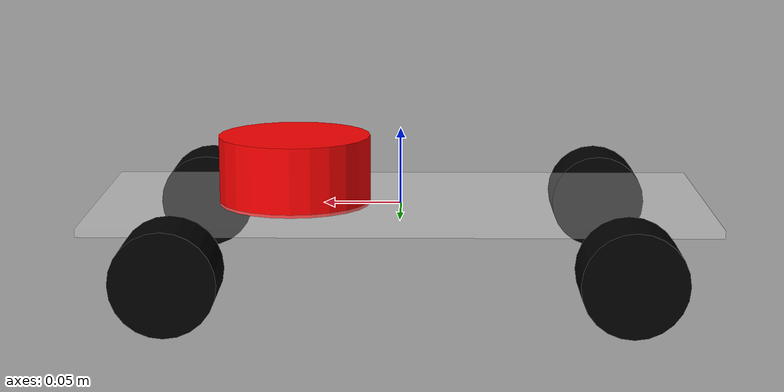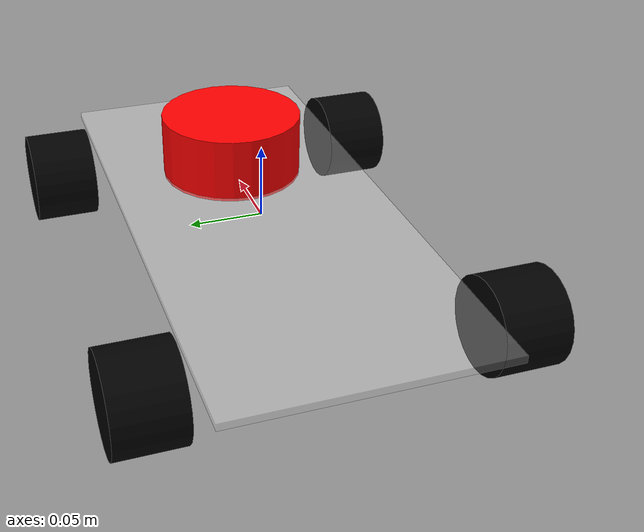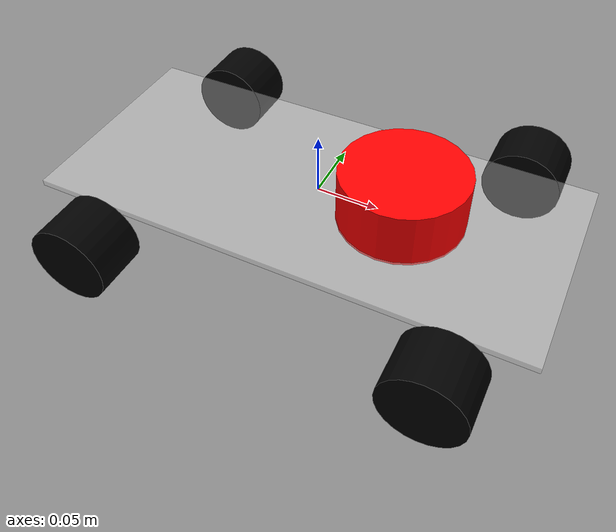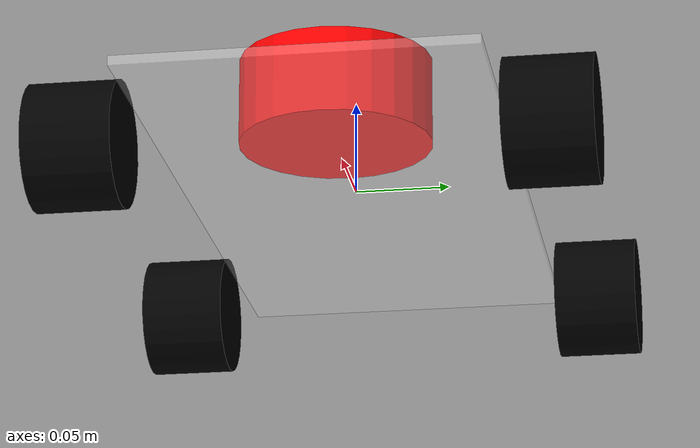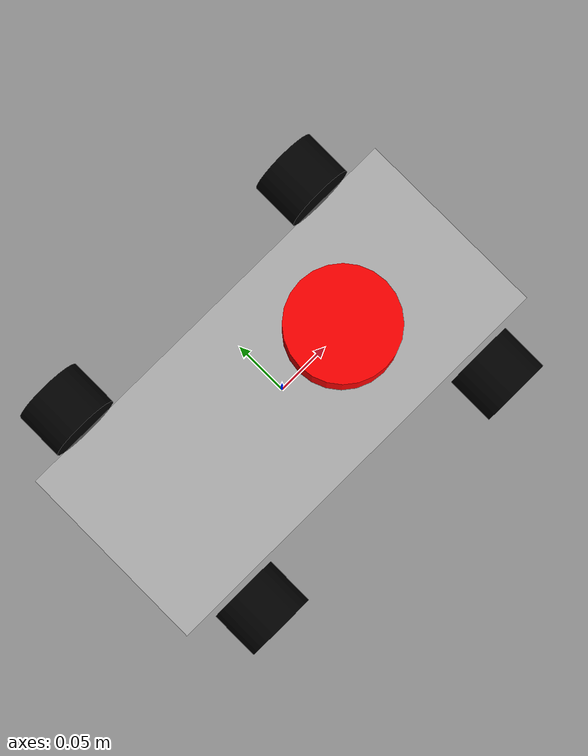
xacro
<?xml version="1.0"?>
<robot xmlns:xacro="http://www.ros.org/wiki/xacro"  name="robot">

   <xacro:arg name="use_ros2_control" default="true"/>

   <xacro:include filename="robot_core2.xacro"/>

   <xacro:if value="$(arg use_ros2_control)">
      <xacro:include filename="ros2_control2.xacro" />
   </xacro:if>
   <xacro:unless value="$(arg use_ros2_control)">
      <xacro:include filename="gazebo_control2.xacro" />
   </xacro:unless>

   <xacro:include filename="lidar2.xacro"/>

</robot>

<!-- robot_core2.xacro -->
<robot xmlns:xacro="http://www.ros.org/wiki/xacro" >

    <xacro:include filename="inertial_macros.xacro"/>

    <material name="white">
        <color rgba="1 1 1 0.3" />
    </material>

    <material name="orange">
        <color rgba="1 0.3 0.1 1"/>
    </material>

    <material name="blue">
        <color rgba="0.2 0.2 1 1"/>
    </material>

    <material name="black">
        <color rgba="0 0 0 1"/>
    </material>

    <material name="red">
        <color rgba="1 0 0 1"/>
    </material>

    <!-- BASE_FOOTPRINT LINK -->

    <link name="base_footprint">
    </link>

    <joint name="base_footprint_joint" type="fixed">
        <parent link="base_footprint"/>
        <child link="base_link"/>
        <origin xyz="0 0 0" rpy="0 0 0"/>
    </joint>

    <!-- BASE LINK -->

    <link name="base_link">

    </link>

    <!-- CHASSIS LINK -->

    <joint name="chassis_joint" type="fixed">
        <parent link="base_link"/>
        <child link="chassis"/>
        <origin xyz="0 0 0"/>
    </joint>

    <link name="chassis">
        <visual>
            <origin xyz="0 0 0"/>
            <geometry>
                <box size="0.4 0.18 0.005"/>
            </geometry>
            <material name="white"/>
        </visual>
        <collision>
            <origin xyz="0 0 0"/>
            <geometry>
                <box size="0.4 0.18 0.005"/>
            </geometry>
        </collision>
        <xacro:inertial_box mass="0.5" x="0.4" y="0.18" z="0.005">
            <origin xyz="0 0 0" rpy="0.0 0.0 0.0"/>
        </xacro:inertial_box>
    </link>

    <gazebo reference="chassis">
        <material>Gazebo/GreyTransparent</material>
    </gazebo>

    <!-- LEFT FRONT WHEEL LINK -->

    <joint name="front_left_wheel_joint" type="continuous">
        <parent link="base_link"/>
        <child link="front_left_wheel"/>
        <origin xyz="0.14 0.1175 -0.02" rpy="-${pi/2} 0 0" />
        <axis xyz="0 0 1"/>
    </joint>

    <link name="front_left_wheel">
        <visual>
            <geometry>
                <cylinder radius="0.0325" length="0.045"/>
            </geometry>
            <material name="black"/>
        </visual>
        <collision>
            <geometry>
                <sphere radius="0.0325"/>
            </geometry>
        </collision>
        <xacro:inertial_cylinder mass="0.1" length="0.045" radius="0.0325">
            <origin xyz="0 0 0" rpy="0.0 0.0 0.0"/>
        </xacro:inertial_cylinder>
    </link>

    <gazebo reference="front_left_wheel">
        <material>Gazebo/Black</material>
        <mu1 value="10"></mu1>
        <mu2 value="10"></mu2>
        <kp>1e10</kp>
        <kd>1e8</kd>
    </gazebo>

    <!-- LEFT REAR WHEEL LINK -->

    <joint name="rear_left_wheel_joint" type="continuous">
        <parent link="base_link"/>
        <child link="rear_left_wheel"/>
        <origin xyz="-0.14 0.1175 -0.02" rpy="-${pi/2} 0 0" />
        <axis xyz="0 0 1"/>
    </joint>

    <link name="rear_left_wheel">
        <visual>
            <geometry>
                <cylinder radius="0.0325" length="0.045"/>
            </geometry>
            <material name="black"/>
        </visual>
        <collision>
            <geometry>
                <sphere radius="0.0325"/>
            </geometry>
        </collision>
        <xacro:inertial_cylinder mass="0.1" length="0.045" radius="0.0325">
            <origin xyz="0 0 0" rpy="0.0 0.0 0.0"/>
        </xacro:inertial_cylinder>
    </link>

    <gazebo reference="rear_left_wheel">
        <material>Gazebo/Black</material>
        <mu1 value="10"></mu1>
        <mu2 value="10"></mu2>
        <kp>1e10</kp>
        <kd>1e8</kd>
    </gazebo>

    <!-- RIGHT FRONT WHEEL LINK -->

    <joint name="front_right_wheel_joint" type="continuous">
        <parent link="base_link"/>
        <child link="front_right_wheel"/>
        <origin xyz="0.14 -0.1175 -0.02" rpy="
        ${pi/2} 0 0" />
        <axis xyz="0 0 -1"/>
    </joint>

    <link name="front_right_wheel">
        <visual>
            <geometry>
                <cylinder radius="0.0325" length="0.045"/>
            </geometry>
            <material name="black"/>
        </visual>
        <collision>
            <geometry>
                <sphere radius="0.0325"/>
            </geometry>
        </collision>
        <xacro:inertial_cylinder mass="0.1" length="0.045" radius="0.0325">
            <origin xyz="0 0 0" rpy="0.0 0.0 0.0"/>
        </xacro:inertial_cylinder>
    </link>

    <gazebo reference="front_right_wheel">
        <material>Gazebo/Black</material>
        <mu1 value="10"></mu1>
        <mu2 value="10"></mu2>
        <kp>1e10</kp>
        <kd>1e8</kd>
    </gazebo>

    <!-- RIGHT REAR WHEEL LINK -->

    <joint name="rear_right_wheel_joint" type="continuous">
        <parent link="base_link"/>
        <child link="rear_right_wheel"/>
        <origin xyz="-0.14 -0.1175 -0.02" rpy="${pi/2} 0 0" />
        <axis xyz="0 0 -1"/>
    </joint>

    <link name="rear_right_wheel">
        <visual>
            <geometry>
                <cylinder radius="0.0325" length="0.045"/>
            </geometry>
            <material name="black"/>
        </visual>
        <collision>
            <geometry>
                <sphere radius="0.0325"/>
            </geometry>
        </collision>
        <xacro:inertial_cylinder mass="0.1" length="0.045" radius="0.0325">
            <origin xyz="0 0 0" rpy="0.0 0.0 0.0"/>
        </xacro:inertial_cylinder>
    </link>

    <gazebo reference="rear_right_wheel">
        <material>Gazebo/Black</material>
        <mu1 value="10"></mu1>
        <mu2 value="10"></mu2>
        <kp>1e10</kp>
        <kd>1e8</kd>
    </gazebo>

</robot>

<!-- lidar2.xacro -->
<robot xmlns:xacro="http://www.ros.org/wiki/xacro"  name="robot">

    <joint name="laser_joint" type="fixed">
        <!-- changed chassis to base_link below -->
        <parent link="base_link"/>
        <child link="laser_frame"/>
        <origin xyz="0.07 0 0.023" rpy="0 0 0"/>
    </joint>

    <link name="laser_frame">
        <visual>
            <geometry>
                <cylinder radius="0.05" length="0.045"/>
            </geometry>
            <material name="red"/>
        </visual>
        <collision>
            <geometry>
                <cylinder radius="0.05" length="0.045"/>
            </geometry>
        </collision>
        <xacro:inertial_cylinder mass="0.1" length="0.045" radius="0.05">
            <origin xyz="0 0 0" rpy="0.0 0.0 0.0"/>
        </xacro:inertial_cylinder>
    </link>

</robot>
